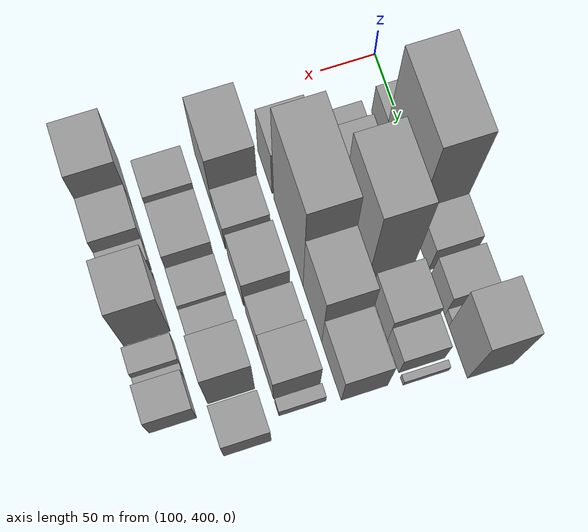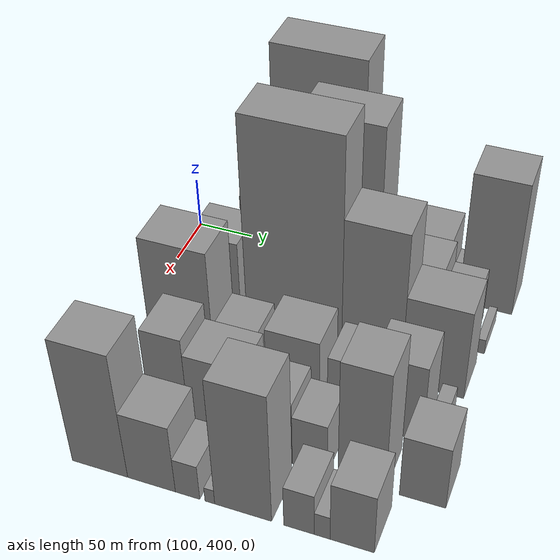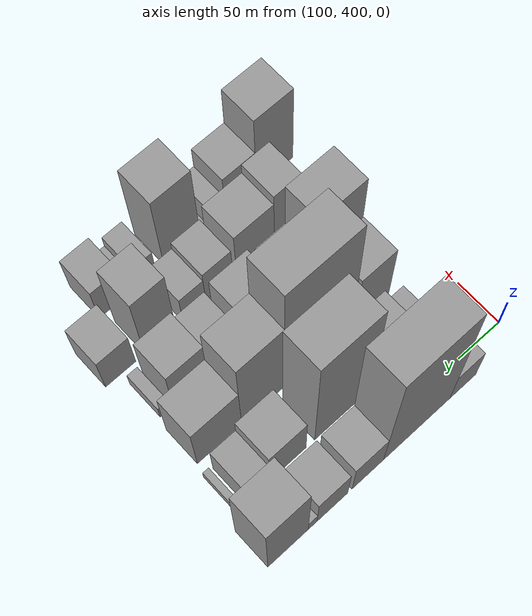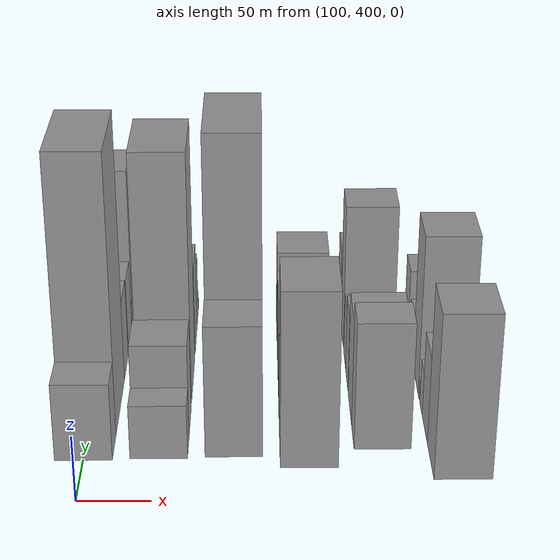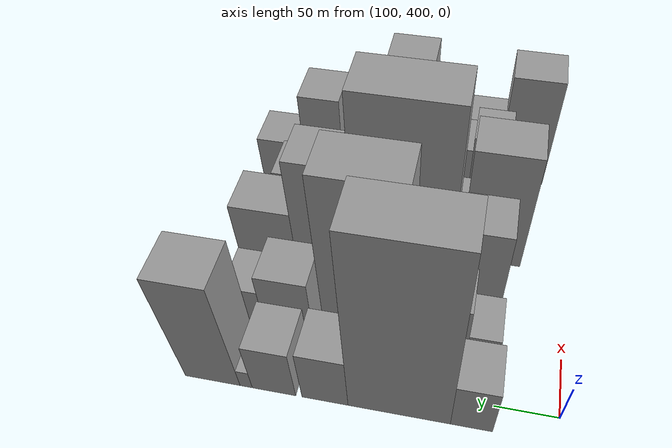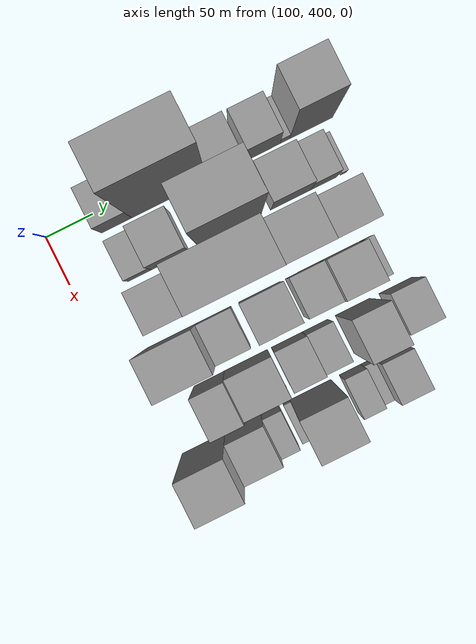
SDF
<sdf version="1.6">
 <world name="default">
  <model name="building_37">
   <static>1</static>
   <pose>100.0000 465.3264 0 0.000000 0.000000 0.000000</pose>
   <link name="link">
    <pose>0 0 30.00 0 0 0</pose>
    <collision name="collision"><geometry><box><size>40.0000 31.7944 60.0000</size></box></geometry></collision>
    <visual name="visual">
     <cast_shadows>0</cast_shadows>
     <geometry><box><size>40.0000 31.7944 60.0000</size></box></geometry>
     <material>
      <script>
       <uri>model://grey_wall/materials/scripts</uri>
       <uri>model://grey_wall/materials/textures</uri>
       <name>vrc/grey_wall</name>
      </script>
     </material>
    </visual>
   </link>
  </model>
  <model name="building_38">
   <static>1</static>
   <pose>100.0000 520.8142 0 0.000000 0.000000 0.000000</pose>
   <link name="link">
    <pose>0 0 108.00 0 0 0</pose>
    <collision name="collision"><geometry><box><size>40.0000 79.1813 216.0000</size></box></geometry></collision>
    <visual name="visual">
     <cast_shadows>0</cast_shadows>
     <geometry><box><size>40.0000 79.1813 216.0000</size></box></geometry>
     <material>
      <script>
       <uri>model://grey_wall/materials/scripts</uri>
       <uri>model://grey_wall/materials/textures</uri>
       <name>vrc/grey_wall</name>
      </script>
     </material>
    </visual>
   </link>
  </model>
  <model name="building_39">
   <static>1</static>
   <pose>100.0000 578.6875 0 0.000000 0.000000 0.000000</pose>
   <link name="link">
    <pose>0 0 33.00 0 0 0</pose>
    <collision name="collision"><geometry><box><size>40.0000 36.5652 66.0000</size></box></geometry></collision>
    <visual name="visual">
     <cast_shadows>0</cast_shadows>
     <geometry><box><size>40.0000 36.5652 66.0000</size></box></geometry>
     <material>
      <script>
       <uri>model://grey_wall/materials/scripts</uri>
       <uri>model://grey_wall/materials/textures</uri>
       <name>vrc/grey_wall</name>
      </script>
     </material>
    </visual>
   </link>
  </model>
  <model name="building_40">
   <static>1</static>
   <pose>100.0000 619.5730 0 0.000000 0.000000 0.000000</pose>
   <link name="link">
    <pose>0 0 31.50 0 0 0</pose>
    <collision name="collision"><geometry><box><size>40.0000 35.2060 63.0000</size></box></geometry></collision>
    <visual name="visual">
     <cast_shadows>0</cast_shadows>
     <geometry><box><size>40.0000 35.2060 63.0000</size></box></geometry>
     <material>
      <script>
       <uri>model://grey_wall/materials/scripts</uri>
       <uri>model://grey_wall/materials/textures</uri>
       <name>vrc/grey_wall</name>
      </script>
     </material>
    </visual>
   </link>
  </model>
  <model name="building_41">
   <static>1</static>
   <pose>100.0000 642.1893 0 0.000000 0.000000 0.000000</pose>
   <link name="link">
    <pose>0 0 12.00 0 0 0</pose>
    <collision name="collision"><geometry><box><size>40.0000 10.0265 24.0000</size></box></geometry></collision>
    <visual name="visual">
     <cast_shadows>0</cast_shadows>
     <geometry><box><size>40.0000 10.0265 24.0000</size></box></geometry>
     <material>
      <script>
       <uri>model://grey_wall/materials/scripts</uri>
       <uri>model://grey_wall/materials/textures</uri>
       <name>vrc/grey_wall</name>
      </script>
     </material>
    </visual>
   </link>
  </model>
  <model name="building_42">
   <static>1</static>
   <pose>100.0000 669.8225 0 0.000000 0.000000 0.000000</pose>
   <link name="link">
    <pose>0 0 67.50 0 0 0</pose>
    <collision name="collision"><geometry><box><size>40.0000 45.2399 135.0000</size></box></geometry></collision>
    <visual name="visual">
     <cast_shadows>0</cast_shadows>
     <geometry><box><size>40.0000 45.2399 135.0000</size></box></geometry>
     <material>
      <script>
       <uri>model://grey_wall/materials/scripts</uri>
       <uri>model://grey_wall/materials/textures</uri>
       <name>vrc/grey_wall</name>
      </script>
     </material>
    </visual>
   </link>
  </model>
  <model name="building_82">
   <static>1</static>
   <pose>152.0000 463.8334 0 0.000000 0.000000 0.000000</pose>
   <link name="link">
    <pose>0 0 21.00 0 0 0</pose>
    <collision name="collision"><geometry><box><size>40.0000 25.0306 42.0000</size></box></geometry></collision>
    <visual name="visual">
     <cast_shadows>0</cast_shadows>
     <geometry><box><size>40.0000 25.0306 42.0000</size></box></geometry>
     <material>
      <script>
       <uri>model://grey_wall/materials/scripts</uri>
       <uri>model://grey_wall/materials/textures</uri>
       <name>vrc/grey_wall</name>
      </script>
     </material>
    </visual>
   </link>
  </model>
  <model name="building_83">
   <static>1</static>
   <pose>152.0000 495.8571 0 0.000000 0.000000 0.000000</pose>
   <link name="link">
    <pose>0 0 37.50 0 0 0</pose>
    <collision name="collision"><geometry><box><size>40.0000 39.0169 75.0000</size></box></geometry></collision>
    <visual name="visual">
     <cast_shadows>0</cast_shadows>
     <geometry><box><size>40.0000 39.0169 75.0000</size></box></geometry>
     <material>
      <script>
       <uri>model://grey_wall/materials/scripts</uri>
       <uri>model://grey_wall/materials/textures</uri>
       <name>vrc/grey_wall</name>
      </script>
     </material>
    </visual>
   </link>
  </model>
  <model name="building_84">
   <static>1</static>
   <pose>152.0000 558.2734 0 0.000000 0.000000 0.000000</pose>
   <link name="link">
    <pose>0 0 99.00 0 0 0</pose>
    <collision name="collision"><geometry><box><size>40.0000 65.8157 198.0000</size></box></geometry></collision>
    <visual name="visual">
     <cast_shadows>0</cast_shadows>
     <geometry><box><size>40.0000 65.8157 198.0000</size></box></geometry>
     <material>
      <script>
       <uri>model://grey_wall/materials/scripts</uri>
       <uri>model://grey_wall/materials/textures</uri>
       <name>vrc/grey_wall</name>
      </script>
     </material>
    </visual>
   </link>
  </model>
  <model name="building_85">
   <static>1</static>
   <pose>152.0000 622.0047 0 0.000000 0.000000 0.000000</pose>
   <link name="link">
    <pose>0 0 37.50 0 0 0</pose>
    <collision name="collision"><geometry><box><size>40.0000 41.6470 75.0000</size></box></geometry></collision>
    <visual name="visual">
     <cast_shadows>0</cast_shadows>
     <geometry><box><size>40.0000 41.6470 75.0000</size></box></geometry>
     <material>
      <script>
       <uri>model://grey_wall/materials/scripts</uri>
       <uri>model://grey_wall/materials/textures</uri>
       <name>vrc/grey_wall</name>
      </script>
     </material>
    </visual>
   </link>
  </model>
  <model name="building_86">
   <static>1</static>
   <pose>152.0000 656.8370 0 0.000000 0.000000 0.000000</pose>
   <link name="link">
    <pose>0 0 27.00 0 0 0</pose>
    <collision name="collision"><geometry><box><size>40.0000 28.0175 54.0000</size></box></geometry></collision>
    <visual name="visual">
     <cast_shadows>0</cast_shadows>
     <geometry><box><size>40.0000 28.0175 54.0000</size></box></geometry>
     <material>
      <script>
       <uri>model://grey_wall/materials/scripts</uri>
       <uri>model://grey_wall/materials/textures</uri>
       <name>vrc/grey_wall</name>
      </script>
     </material>
    </visual>
   </link>
  </model>
  <model name="building_87">
   <static>1</static>
   <pose>152.0000 678.2125 0 0.000000 0.000000 0.000000</pose>
   <link name="link">
    <pose>0 0 7.50 0 0 0</pose>
    <collision name="collision"><geometry><box><size>40.0000 6.7335 15.0000</size></box></geometry></collision>
    <visual name="visual">
     <cast_shadows>0</cast_shadows>
     <geometry><box><size>40.0000 6.7335 15.0000</size></box></geometry>
     <material>
      <script>
       <uri>model://grey_wall/materials/scripts</uri>
       <uri>model://grey_wall/materials/textures</uri>
       <name>vrc/grey_wall</name>
      </script>
     </material>
    </visual>
   </link>
  </model>
  <model name="building_136">
   <static>1</static>
   <pose>204.0000 473.1175 0 0.000000 0.000000 0.000000</pose>
   <link name="link">
    <pose>0 0 51.00 0 0 0</pose>
    <collision name="collision"><geometry><box><size>40.0000 40.0647 102.0000</size></box></geometry></collision>
    <visual name="visual">
     <cast_shadows>0</cast_shadows>
     <geometry><box><size>40.0000 40.0647 102.0000</size></box></geometry>
     <material>
      <script>
       <uri>model://grey_wall/materials/scripts</uri>
       <uri>model://grey_wall/materials/textures</uri>
       <name>vrc/grey_wall</name>
      </script>
     </material>
    </visual>
   </link>
  </model>
  <model name="building_137">
   <static>1</static>
   <pose>204.0000 538.0201 0 0.000000 0.000000 0.000000</pose>
   <link name="link">
    <pose>0 0 111.00 0 0 0</pose>
    <collision name="collision"><geometry><box><size>40.0000 79.7405 222.0000</size></box></geometry></collision>
    <visual name="visual">
     <cast_shadows>0</cast_shadows>
     <geometry><box><size>40.0000 79.7405 222.0000</size></box></geometry>
     <material>
      <script>
       <uri>model://grey_wall/materials/scripts</uri>
       <uri>model://grey_wall/materials/textures</uri>
       <name>vrc/grey_wall</name>
      </script>
     </material>
    </visual>
   </link>
  </model>
  <model name="building_138">
   <static>1</static>
   <pose>204.0000 602.6849 0 0.000000 0.000000 0.000000</pose>
   <link name="link">
    <pose>0 0 75.00 0 0 0</pose>
    <collision name="collision"><geometry><box><size>40.0000 49.5892 150.0000</size></box></geometry></collision>
    <visual name="visual">
     <cast_shadows>0</cast_shadows>
     <geometry><box><size>40.0000 49.5892 150.0000</size></box></geometry>
     <material>
      <script>
       <uri>model://grey_wall/materials/scripts</uri>
       <uri>model://grey_wall/materials/textures</uri>
       <name>vrc/grey_wall</name>
      </script>
     </material>
    </visual>
   </link>
  </model>
  <model name="building_139">
   <static>1</static>
   <pose>204.0000 652.6378 0 0.000000 0.000000 0.000000</pose>
   <link name="link">
    <pose>0 0 45.00 0 0 0</pose>
    <collision name="collision"><geometry><box><size>40.0000 50.3165 90.0000</size></box></geometry></collision>
    <visual name="visual">
     <cast_shadows>0</cast_shadows>
     <geometry><box><size>40.0000 50.3165 90.0000</size></box></geometry>
     <material>
      <script>
       <uri>model://grey_wall/materials/scripts</uri>
       <uri>model://grey_wall/materials/textures</uri>
       <name>vrc/grey_wall</name>
      </script>
     </material>
    </visual>
   </link>
  </model>
  <model name="building_180">
   <static>1</static>
   <pose>256.0000 465.7225 0 0.000000 0.000000 0.000000</pose>
   <link name="link">
    <pose>0 0 67.50 0 0 0</pose>
    <collision name="collision"><geometry><box><size>40.0000 53.6320 135.0000</size></box></geometry></collision>
    <visual name="visual">
     <cast_shadows>0</cast_shadows>
     <geometry><box><size>40.0000 53.6320 135.0000</size></box></geometry>
     <material>
      <script>
       <uri>model://grey_wall/materials/scripts</uri>
       <uri>model://grey_wall/materials/textures</uri>
       <name>vrc/grey_wall</name>
      </script>
     </material>
    </visual>
   </link>
  </model>
  <model name="building_181">
   <static>1</static>
   <pose>256.0000 509.8929 0 0.000000 0.000000 0.000000</pose>
   <link name="link">
    <pose>0 0 31.50 0 0 0</pose>
    <collision name="collision"><geometry><box><size>40.0000 34.7088 63.0000</size></box></geometry></collision>
    <visual name="visual">
     <cast_shadows>0</cast_shadows>
     <geometry><box><size>40.0000 34.7088 63.0000</size></box></geometry>
     <material>
      <script>
       <uri>model://grey_wall/materials/scripts</uri>
       <uri>model://grey_wall/materials/textures</uri>
       <name>vrc/grey_wall</name>
      </script>
     </material>
    </visual>
   </link>
  </model>
  <model name="building_182">
   <static>1</static>
   <pose>256.0000 556.8422 0 0.000000 0.000000 0.000000</pose>
   <link name="link">
    <pose>0 0 37.50 0 0 0</pose>
    <collision name="collision"><geometry><box><size>40.0000 43.1899 75.0000</size></box></geometry></collision>
    <visual name="visual">
     <cast_shadows>0</cast_shadows>
     <geometry><box><size>40.0000 43.1899 75.0000</size></box></geometry>
     <material>
      <script>
       <uri>model://grey_wall/materials/scripts</uri>
       <uri>model://grey_wall/materials/textures</uri>
       <name>vrc/grey_wall</name>
      </script>
     </material>
    </visual>
   </link>
  </model>
  <model name="building_183">
   <static>1</static>
   <pose>256.0000 601.8945 0 0.000000 0.000000 0.000000</pose>
   <link name="link">
    <pose>0 0 31.50 0 0 0</pose>
    <collision name="collision"><geometry><box><size>40.0000 34.9147 63.0000</size></box></geometry></collision>
    <visual name="visual">
     <cast_shadows>0</cast_shadows>
     <geometry><box><size>40.0000 34.9147 63.0000</size></box></geometry>
     <material>
      <script>
       <uri>model://grey_wall/materials/scripts</uri>
       <uri>model://grey_wall/materials/textures</uri>
       <name>vrc/grey_wall</name>
      </script>
     </material>
    </visual>
   </link>
  </model>
  <model name="building_184">
   <static>1</static>
   <pose>256.0000 639.5290 0 0.000000 0.000000 0.000000</pose>
   <link name="link">
    <pose>0 0 39.00 0 0 0</pose>
    <collision name="collision"><geometry><box><size>40.0000 40.3544 78.0000</size></box></geometry></collision>
    <visual name="visual">
     <cast_shadows>0</cast_shadows>
     <geometry><box><size>40.0000 40.3544 78.0000</size></box></geometry>
     <material>
      <script>
       <uri>model://grey_wall/materials/scripts</uri>
       <uri>model://grey_wall/materials/textures</uri>
       <name>vrc/grey_wall</name>
      </script>
     </material>
    </visual>
   </link>
  </model>
  <model name="building_185">
   <static>1</static>
   <pose>256.0000 668.4818 0 0.000000 0.000000 0.000000</pose>
   <link name="link">
    <pose>0 0 12.00 0 0 0</pose>
    <collision name="collision"><geometry><box><size>40.0000 11.5511 24.0000</size></box></geometry></collision>
    <visual name="visual">
     <cast_shadows>0</cast_shadows>
     <geometry><box><size>40.0000 11.5511 24.0000</size></box></geometry>
     <material>
      <script>
       <uri>model://grey_wall/materials/scripts</uri>
       <uri>model://grey_wall/materials/textures</uri>
       <name>vrc/grey_wall</name>
      </script>
     </material>
    </visual>
   </link>
  </model>
  <model name="building_227">
   <static>1</static>
   <pose>308.0000 478.3306 0 0.000000 0.000000 0.000000</pose>
   <link name="link">
    <pose>0 0 49.50 0 0 0</pose>
    <collision name="collision"><geometry><box><size>40.0000 31.8726 99.0000</size></box></geometry></collision>
    <visual name="visual">
     <cast_shadows>0</cast_shadows>
     <geometry><box><size>40.0000 31.8726 99.0000</size></box></geometry>
     <material>
      <script>
       <uri>model://grey_wall/materials/scripts</uri>
       <uri>model://grey_wall/materials/textures</uri>
       <name>vrc/grey_wall</name>
      </script>
     </material>
    </visual>
   </link>
  </model>
  <model name="building_228">
   <static>1</static>
   <pose>308.0000 516.9680 0 0.000000 0.000000 0.000000</pose>
   <link name="link">
    <pose>0 0 42.00 0 0 0</pose>
    <collision name="collision"><geometry><box><size>40.0000 45.4022 84.0000</size></box></geometry></collision>
    <visual name="visual">
     <cast_shadows>0</cast_shadows>
     <geometry><box><size>40.0000 45.4022 84.0000</size></box></geometry>
     <material>
      <script>
       <uri>model://grey_wall/materials/scripts</uri>
       <uri>model://grey_wall/materials/textures</uri>
       <name>vrc/grey_wall</name>
      </script>
     </material>
    </visual>
   </link>
  </model>
  <model name="building_229">
   <static>1</static>
   <pose>308.0000 559.8128 0 0.000000 0.000000 0.000000</pose>
   <link name="link">
    <pose>0 0 31.50 0 0 0</pose>
    <collision name="collision"><geometry><box><size>40.0000 32.2874 63.0000</size></box></geometry></collision>
    <visual name="visual">
     <cast_shadows>0</cast_shadows>
     <geometry><box><size>40.0000 32.2874 63.0000</size></box></geometry>
     <material>
      <script>
       <uri>model://grey_wall/materials/scripts</uri>
       <uri>model://grey_wall/materials/textures</uri>
       <name>vrc/grey_wall</name>
      </script>
     </material>
    </visual>
   </link>
  </model>
  <model name="building_230">
   <static>1</static>
   <pose>308.0000 589.5141 0 0.000000 0.000000 0.000000</pose>
   <link name="link">
    <pose>0 0 25.50 0 0 0</pose>
    <collision name="collision"><geometry><box><size>40.0000 27.1152 51.0000</size></box></geometry></collision>
    <visual name="visual">
     <cast_shadows>0</cast_shadows>
     <geometry><box><size>40.0000 27.1152 51.0000</size></box></geometry>
     <material>
      <script>
       <uri>model://grey_wall/materials/scripts</uri>
       <uri>model://grey_wall/materials/textures</uri>
       <name>vrc/grey_wall</name>
      </script>
     </material>
    </visual>
   </link>
  </model>
  <model name="building_231">
   <static>1</static>
   <pose>308.0000 629.1372 0 0.000000 0.000000 0.000000</pose>
   <link name="link">
    <pose>0 0 60.00 0 0 0</pose>
    <collision name="collision"><geometry><box><size>40.0000 36.1309 120.0000</size></box></geometry></collision>
    <visual name="visual">
     <cast_shadows>0</cast_shadows>
     <geometry><box><size>40.0000 36.1309 120.0000</size></box></geometry>
     <material>
      <script>
       <uri>model://grey_wall/materials/scripts</uri>
       <uri>model://grey_wall/materials/textures</uri>
       <name>vrc/grey_wall</name>
      </script>
     </material>
    </visual>
   </link>
  </model>
  <model name="building_232">
   <static>1</static>
   <pose>308.0000 674.2612 0 0.000000 0.000000 0.000000</pose>
   <link name="link">
    <pose>0 0 31.50 0 0 0</pose>
    <collision name="collision"><geometry><box><size>40.0000 34.1171 63.0000</size></box></geometry></collision>
    <visual name="visual">
     <cast_shadows>0</cast_shadows>
     <geometry><box><size>40.0000 34.1171 63.0000</size></box></geometry>
     <material>
      <script>
       <uri>model://grey_wall/materials/scripts</uri>
       <uri>model://grey_wall/materials/textures</uri>
       <name>vrc/grey_wall</name>
      </script>
     </material>
    </visual>
   </link>
  </model>
  <model name="building_274">
   <static>1</static>
   <pose>360.0000 446.2600 0 0.000000 0.000000 0.000000</pose>
   <link name="link">
    <pose>0 0 63.00 0 0 0</pose>
    <collision name="collision"><geometry><box><size>40.0000 44.9678 126.0000</size></box></geometry></collision>
    <visual name="visual">
     <cast_shadows>0</cast_shadows>
     <geometry><box><size>40.0000 44.9678 126.0000</size></box></geometry>
     <material>
      <script>
       <uri>model://grey_wall/materials/scripts</uri>
       <uri>model://grey_wall/materials/textures</uri>
       <name>vrc/grey_wall</name>
      </script>
     </material>
    </visual>
   </link>
  </model>
  <model name="building_275">
   <static>1</static>
   <pose>360.0000 487.6919 0 0.000000 0.000000 0.000000</pose>
   <link name="link">
    <pose>0 0 34.50 0 0 0</pose>
    <collision name="collision"><geometry><box><size>40.0000 37.8960 69.0000</size></box></geometry></collision>
    <visual name="visual">
     <cast_shadows>0</cast_shadows>
     <geometry><box><size>40.0000 37.8960 69.0000</size></box></geometry>
     <material>
      <script>
       <uri>model://grey_wall/materials/scripts</uri>
       <uri>model://grey_wall/materials/textures</uri>
       <name>vrc/grey_wall</name>
      </script>
     </material>
    </visual>
   </link>
  </model>
  <model name="building_276">
   <static>1</static>
   <pose>360.0000 516.1438 0 0.000000 0.000000 0.000000</pose>
   <link name="link">
    <pose>0 0 18.00 0 0 0</pose>
    <collision name="collision"><geometry><box><size>40.0000 19.0079 36.0000</size></box></geometry></collision>
    <visual name="visual">
     <cast_shadows>0</cast_shadows>
     <geometry><box><size>40.0000 19.0079 36.0000</size></box></geometry>
     <material>
      <script>
       <uri>model://grey_wall/materials/scripts</uri>
       <uri>model://grey_wall/materials/textures</uri>
       <name>vrc/grey_wall</name>
      </script>
     </material>
    </visual>
   </link>
  </model>
  <model name="building_277">
   <static>1</static>
   <pose>360.0000 533.3837 0 0.000000 0.000000 0.000000</pose>
   <link name="link">
    <pose>0 0 7.50 0 0 0</pose>
    <collision name="collision"><geometry><box><size>40.0000 7.4719 15.0000</size></box></geometry></collision>
    <visual name="visual">
     <cast_shadows>0</cast_shadows>
     <geometry><box><size>40.0000 7.4719 15.0000</size></box></geometry>
     <material>
      <script>
       <uri>model://grey_wall/materials/scripts</uri>
       <uri>model://grey_wall/materials/textures</uri>
       <name>vrc/grey_wall</name>
      </script>
     </material>
    </visual>
   </link>
  </model>
  <model name="building_278">
   <static>1</static>
   <pose>360.0000 558.7238 0 0.000000 0.000000 0.000000</pose>
   <link name="link">
    <pose>0 0 64.50 0 0 0</pose>
    <collision name="collision"><geometry><box><size>40.0000 43.2083 129.0000</size></box></geometry></collision>
    <visual name="visual">
     <cast_shadows>0</cast_shadows>
     <geometry><box><size>40.0000 43.2083 129.0000</size></box></geometry>
     <material>
      <script>
       <uri>model://grey_wall/materials/scripts</uri>
       <uri>model://grey_wall/materials/textures</uri>
       <name>vrc/grey_wall</name>
      </script>
     </material>
    </visual>
   </link>
  </model>
  <model name="building_279">
   <static>1</static>
   <pose>360.0000 600.5659 0 0.000000 0.000000 0.000000</pose>
   <link name="link">
    <pose>0 0 21.00 0 0 0</pose>
    <collision name="collision"><geometry><box><size>40.0000 22.4757 42.0000</size></box></geometry></collision>
    <visual name="visual">
     <cast_shadows>0</cast_shadows>
     <geometry><box><size>40.0000 22.4757 42.0000</size></box></geometry>
     <material>
      <script>
       <uri>model://grey_wall/materials/scripts</uri>
       <uri>model://grey_wall/materials/textures</uri>
       <name>vrc/grey_wall</name>
      </script>
     </material>
    </visual>
   </link>
  </model>
  <model name="building_280">
   <static>1</static>
   <pose>360.0000 617.5736 0 0.000000 0.000000 0.000000</pose>
   <link name="link">
    <pose>0 0 12.00 0 0 0</pose>
    <collision name="collision"><geometry><box><size>40.0000 11.5397 24.0000</size></box></geometry></collision>
    <visual name="visual">
     <cast_shadows>0</cast_shadows>
     <geometry><box><size>40.0000 11.5397 24.0000</size></box></geometry>
     <material>
      <script>
       <uri>model://grey_wall/materials/scripts</uri>
       <uri>model://grey_wall/materials/textures</uri>
       <name>vrc/grey_wall</name>
      </script>
     </material>
    </visual>
   </link>
  </model>
  <model name="building_281">
   <static>1</static>
   <pose>360.0000 639.2761 0 0.000000 0.000000 0.000000</pose>
   <link name="link">
    <pose>0 0 30.00 0 0 0</pose>
    <collision name="collision"><geometry><box><size>40.0000 31.8653 60.0000</size></box></geometry></collision>
    <visual name="visual">
     <cast_shadows>0</cast_shadows>
     <geometry><box><size>40.0000 31.8653 60.0000</size></box></geometry>
     <material>
      <script>
       <uri>model://grey_wall/materials/scripts</uri>
       <uri>model://grey_wall/materials/textures</uri>
       <name>vrc/grey_wall</name>
      </script>
     </material>
    </visual>
   </link>
  </model>
 </world>
</sdf>
